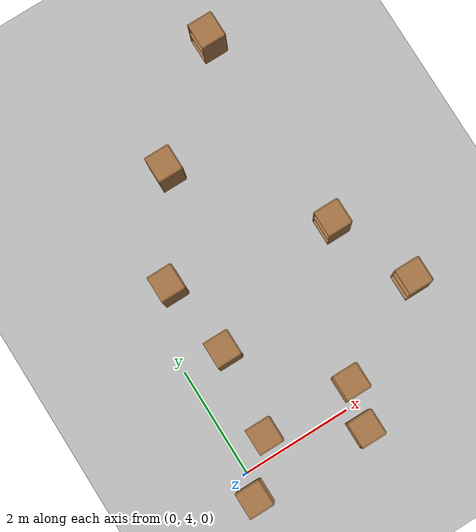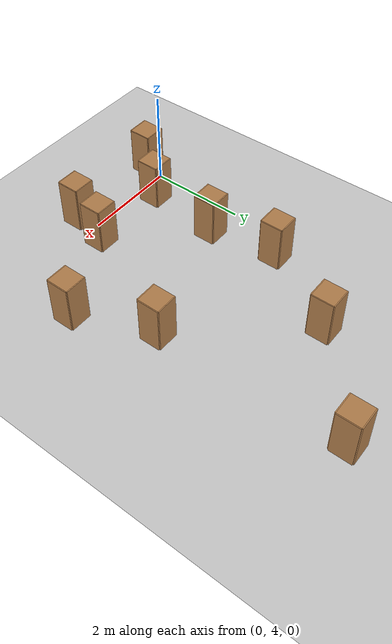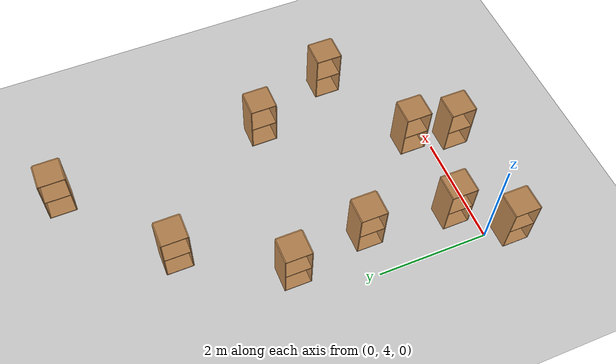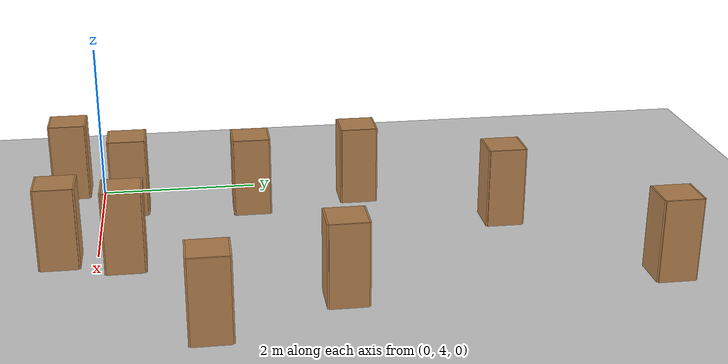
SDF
<sdf version="1.6">
 <world name="default">
  <model name="ground_plane">
   <static>1</static>
   <link name="link">
    <collision name="collision">
     <geometry><plane><normal>0 0 1</normal><size>100 100</size></plane></geometry>
     <surface><friction><ode><mu>100</mu><mu2>50</mu2></ode></friction></surface>
    </collision>
    <visual name="visual">
     <cast_shadows>0</cast_shadows>
     <geometry><plane><normal>0 0 1</normal><size>100 100</size></plane></geometry>
     <material>
      <script><uri>file://media/materials/scripts/gazebo.material</uri><name>Gazebo/Grey</name></script>
     </material>
    </visual>
   </link>
  </model>
  <model name="cabinet_0">
   <static>1</static>
   <link name="cabinet_bottom_plate">
    <inertial>
     <pose>0 0 -1 0 -0 0</pose>
     <inertia><ixx>2.05</ixx><ixy>0</ixy><ixz>0</ixz><iyy>2.05</iyy><iyz>0</iyz><izz>2.05</izz></inertia>
     <mass>25</mass>
    </inertial>
    <collision name="cabinet_bottom_plate_geom">
     <pose>0 0 0.01 0 -0 0</pose>
     <geometry><box><size>0.45 0.45 0.02</size></box></geometry>
    </collision>
    <visual name="cabinet_bottom_plate_geom_visual">
     <pose>0 0 0.01 0 -0 0</pose>
     <geometry><box><size>0.45 0.45 0.02</size></box></geometry>
     <material>
      <script><uri>file://media/materials/scripts/gazebo.material</uri><name>Gazebo/Wood</name></script>
     </material>
    </visual>
    <collision name="cabinet_bottom_plate_geom_cabinet_back_plate">
     <pose>0.235 0 0.51 0 -0 0</pose>
     <geometry><box><size>0.02 0.45 1.02</size></box></geometry>
    </collision>
    <visual name="cabinet_bottom_plate_geom_cabinet_back_plate_visual">
     <pose>0.235 0 0.51 0 -0 0</pose>
     <geometry><box><size>0.02 0.45 1.02</size></box></geometry>
     <material>
      <script><uri>file://media/materials/scripts/gazebo.material</uri><name>Gazebo/Wood</name></script>
     </material>
    </visual>
    <collision name="cabinet_bottom_plate_geom_cabinet_left_plate">
     <pose>0 0.235 0.51 0 -0 0</pose>
     <geometry><box><size>0.45 0.02 1.02</size></box></geometry>
    </collision>
    <visual name="cabinet_bottom_plate_geom_cabinet_left_plate_visual">
     <pose>0 0.235 0.51 0 -0 0</pose>
     <geometry><box><size>0.45 0.02 1.02</size></box></geometry>
     <material>
      <script><uri>file://media/materials/scripts/gazebo.material</uri><name>Gazebo/Wood</name></script>
     </material>
    </visual>
    <collision name="cabinet_bottom_plate_geom_cabinet_middle_plate">
     <pose>0 0 0.51 0 -0 0</pose>
     <geometry><box><size>0.45 0.45 0.02</size></box></geometry>
    </collision>
    <visual name="cabinet_bottom_plate_geom_cabinet_middle_plate_visual">
     <pose>0 0 0.51 0 -0 0</pose>
     <geometry><box><size>0.45 0.45 0.02</size></box></geometry>
     <material>
      <script><uri>file://media/materials/scripts/gazebo.material</uri><name>Gazebo/Wood</name></script>
     </material>
    </visual>
    <collision name="cabinet_bottom_plate_geom_cabinet_right_plate">
     <pose>0 -0.235 0.51 0 -0 0</pose>
     <geometry><box><size>0.45 0.02 1.02</size></box></geometry>
    </collision>
    <visual name="cabinet_bottom_plate_geom_cabinet_right_plate_visual">
     <pose>0 -0.235 0.51 0 -0 0</pose>
     <geometry><box><size>0.45 0.02 1.02</size></box></geometry>
     <material>
      <script><uri>file://media/materials/scripts/gazebo.material</uri><name>Gazebo/Wood</name></script>
     </material>
    </visual>
    <collision name="cabinet_bottom_plate_geom_cabinet_top_plate">
     <pose>0 0 1.01 0 -0 0</pose>
     <geometry><box><size>0.45 0.45 0.02</size></box></geometry>
    </collision>
    <visual name="cabinet_bottom_plate_geom_cabinet_top_plate_visual">
     <pose>0 0 1.01 0 -0 0</pose>
     <geometry><box><size>0.45 0.45 0.02</size></box></geometry>
     <material>
      <script><uri>file://media/materials/scripts/gazebo.material</uri><name>Gazebo/Wood</name></script>
     </material>
    </visual>
   </link>
   <pose>3.3673 10.6414 0 0 -0 0</pose>
  </model>
  <model name="cabinet_1">
   <static>1</static>
   <link name="cabinet_bottom_plate">
    <inertial>
     <pose>0 0 -1 0 -0 0</pose>
     <inertia><ixx>2.05</ixx><ixy>0</ixy><ixz>0</ixz><iyy>2.05</iyy><iyz>0</iyz><izz>2.05</izz></inertia>
     <mass>25</mass>
    </inertial>
    <collision name="cabinet_bottom_plate_geom">
     <pose>0 0 0.01 0 -0 0</pose>
     <geometry><box><size>0.45 0.45 0.02</size></box></geometry>
    </collision>
    <visual name="cabinet_bottom_plate_geom_visual">
     <pose>0 0 0.01 0 -0 0</pose>
     <geometry><box><size>0.45 0.45 0.02</size></box></geometry>
     <material>
      <script><uri>file://media/materials/scripts/gazebo.material</uri><name>Gazebo/Wood</name></script>
     </material>
    </visual>
    <collision name="cabinet_bottom_plate_geom_cabinet_back_plate">
     <pose>0.235 0 0.51 0 -0 0</pose>
     <geometry><box><size>0.02 0.45 1.02</size></box></geometry>
    </collision>
    <visual name="cabinet_bottom_plate_geom_cabinet_back_plate_visual">
     <pose>0.235 0 0.51 0 -0 0</pose>
     <geometry><box><size>0.02 0.45 1.02</size></box></geometry>
     <material>
      <script><uri>file://media/materials/scripts/gazebo.material</uri><name>Gazebo/Wood</name></script>
     </material>
    </visual>
    <collision name="cabinet_bottom_plate_geom_cabinet_left_plate">
     <pose>0 0.235 0.51 0 -0 0</pose>
     <geometry><box><size>0.45 0.02 1.02</size></box></geometry>
    </collision>
    <visual name="cabinet_bottom_plate_geom_cabinet_left_plate_visual">
     <pose>0 0.235 0.51 0 -0 0</pose>
     <geometry><box><size>0.45 0.02 1.02</size></box></geometry>
     <material>
      <script><uri>file://media/materials/scripts/gazebo.material</uri><name>Gazebo/Wood</name></script>
     </material>
    </visual>
    <collision name="cabinet_bottom_plate_geom_cabinet_middle_plate">
     <pose>0 0 0.51 0 -0 0</pose>
     <geometry><box><size>0.45 0.45 0.02</size></box></geometry>
    </collision>
    <visual name="cabinet_bottom_plate_geom_cabinet_middle_plate_visual">
     <pose>0 0 0.51 0 -0 0</pose>
     <geometry><box><size>0.45 0.45 0.02</size></box></geometry>
     <material>
      <script><uri>file://media/materials/scripts/gazebo.material</uri><name>Gazebo/Wood</name></script>
     </material>
    </visual>
    <collision name="cabinet_bottom_plate_geom_cabinet_right_plate">
     <pose>0 -0.235 0.51 0 -0 0</pose>
     <geometry><box><size>0.45 0.02 1.02</size></box></geometry>
    </collision>
    <visual name="cabinet_bottom_plate_geom_cabinet_right_plate_visual">
     <pose>0 -0.235 0.51 0 -0 0</pose>
     <geometry><box><size>0.45 0.02 1.02</size></box></geometry>
     <material>
      <script><uri>file://media/materials/scripts/gazebo.material</uri><name>Gazebo/Wood</name></script>
     </material>
    </visual>
    <collision name="cabinet_bottom_plate_geom_cabinet_top_plate">
     <pose>0 0 1.01 0 -0 0</pose>
     <geometry><box><size>0.45 0.45 0.02</size></box></geometry>
    </collision>
    <visual name="cabinet_bottom_plate_geom_cabinet_top_plate_visual">
     <pose>0 0 1.01 0 -0 0</pose>
     <geometry><box><size>0.45 0.45 0.02</size></box></geometry>
     <material>
      <script><uri>file://media/materials/scripts/gazebo.material</uri><name>Gazebo/Wood</name></script>
     </material>
    </visual>
   </link>
   <pose>1.55819 9.08131 0 0 -0 0</pose>
  </model>
  <model name="cabinet_10">
   <static>1</static>
   <link name="cabinet_bottom_plate">
    <inertial>
     <pose>0 0 -1 0 -0 0</pose>
     <inertia><ixx>2.05</ixx><ixy>0</ixy><ixz>0</ixz><iyy>2.05</iyy><iyz>0</iyz><izz>2.05</izz></inertia>
     <mass>25</mass>
    </inertial>
    <collision name="cabinet_bottom_plate_geom">
     <pose>0 0 0.01 0 -0 0</pose>
     <geometry><box><size>0.45 0.45 0.02</size></box></geometry>
    </collision>
    <visual name="cabinet_bottom_plate_geom_visual">
     <pose>0 0 0.01 0 -0 0</pose>
     <geometry><box><size>0.45 0.45 0.02</size></box></geometry>
     <material>
      <script><uri>file://media/materials/scripts/gazebo.material</uri><name>Gazebo/Wood</name></script>
     </material>
    </visual>
    <collision name="cabinet_bottom_plate_geom_cabinet_back_plate">
     <pose>0.235 0 0.51 0 -0 0</pose>
     <geometry><box><size>0.02 0.45 1.02</size></box></geometry>
    </collision>
    <visual name="cabinet_bottom_plate_geom_cabinet_back_plate_visual">
     <pose>0.235 0 0.51 0 -0 0</pose>
     <geometry><box><size>0.02 0.45 1.02</size></box></geometry>
     <material>
      <script><uri>file://media/materials/scripts/gazebo.material</uri><name>Gazebo/Wood</name></script>
     </material>
    </visual>
    <collision name="cabinet_bottom_plate_geom_cabinet_left_plate">
     <pose>0 0.235 0.51 0 -0 0</pose>
     <geometry><box><size>0.45 0.02 1.02</size></box></geometry>
    </collision>
    <visual name="cabinet_bottom_plate_geom_cabinet_left_plate_visual">
     <pose>0 0.235 0.51 0 -0 0</pose>
     <geometry><box><size>0.45 0.02 1.02</size></box></geometry>
     <material>
      <script><uri>file://media/materials/scripts/gazebo.material</uri><name>Gazebo/Wood</name></script>
     </material>
    </visual>
    <collision name="cabinet_bottom_plate_geom_cabinet_middle_plate">
     <pose>0 0 0.51 0 -0 0</pose>
     <geometry><box><size>0.45 0.45 0.02</size></box></geometry>
    </collision>
    <visual name="cabinet_bottom_plate_geom_cabinet_middle_plate_visual">
     <pose>0 0 0.51 0 -0 0</pose>
     <geometry><box><size>0.45 0.45 0.02</size></box></geometry>
     <material>
      <script><uri>file://media/materials/scripts/gazebo.material</uri><name>Gazebo/Wood</name></script>
     </material>
    </visual>
    <collision name="cabinet_bottom_plate_geom_cabinet_right_plate">
     <pose>0 -0.235 0.51 0 -0 0</pose>
     <geometry><box><size>0.45 0.02 1.02</size></box></geometry>
    </collision>
    <visual name="cabinet_bottom_plate_geom_cabinet_right_plate_visual">
     <pose>0 -0.235 0.51 0 -0 0</pose>
     <geometry><box><size>0.45 0.02 1.02</size></box></geometry>
     <material>
      <script><uri>file://media/materials/scripts/gazebo.material</uri><name>Gazebo/Wood</name></script>
     </material>
    </visual>
    <collision name="cabinet_bottom_plate_geom_cabinet_top_plate">
     <pose>0 0 1.01 0 -0 0</pose>
     <geometry><box><size>0.45 0.45 0.02</size></box></geometry>
    </collision>
    <visual name="cabinet_bottom_plate_geom_cabinet_top_plate_visual">
     <pose>0 0 1.01 0 -0 0</pose>
     <geometry><box><size>0.45 0.45 0.02</size></box></geometry>
     <material>
      <script><uri>file://media/materials/scripts/gazebo.material</uri><name>Gazebo/Wood</name></script>
     </material>
    </visual>
   </link>
   <pose>0.54763 7.35241 0 0 -0 0</pose>
  </model>
  <model name="cabinet_17">
   <static>1</static>
   <link name="cabinet_bottom_plate">
    <inertial>
     <pose>0 0 -1 0 -0 0</pose>
     <inertia><ixx>2.05</ixx><ixy>0</ixy><ixz>0</ixz><iyy>2.05</iyy><iyz>0</iyz><izz>2.05</izz></inertia>
     <mass>25</mass>
    </inertial>
    <collision name="cabinet_bottom_plate_geom">
     <pose>0 0 0.01 0 -0 0</pose>
     <geometry><box><size>0.45 0.45 0.02</size></box></geometry>
    </collision>
    <visual name="cabinet_bottom_plate_geom_visual">
     <pose>0 0 0.01 0 -0 0</pose>
     <geometry><box><size>0.45 0.45 0.02</size></box></geometry>
     <material>
      <script><uri>file://media/materials/scripts/gazebo.material</uri><name>Gazebo/Wood</name></script>
     </material>
    </visual>
    <collision name="cabinet_bottom_plate_geom_cabinet_back_plate">
     <pose>0.235 0 0.51 0 -0 0</pose>
     <geometry><box><size>0.02 0.45 1.02</size></box></geometry>
    </collision>
    <visual name="cabinet_bottom_plate_geom_cabinet_back_plate_visual">
     <pose>0.235 0 0.51 0 -0 0</pose>
     <geometry><box><size>0.02 0.45 1.02</size></box></geometry>
     <material>
      <script><uri>file://media/materials/scripts/gazebo.material</uri><name>Gazebo/Wood</name></script>
     </material>
    </visual>
    <collision name="cabinet_bottom_plate_geom_cabinet_left_plate">
     <pose>0 0.235 0.51 0 -0 0</pose>
     <geometry><box><size>0.45 0.02 1.02</size></box></geometry>
    </collision>
    <visual name="cabinet_bottom_plate_geom_cabinet_left_plate_visual">
     <pose>0 0.235 0.51 0 -0 0</pose>
     <geometry><box><size>0.45 0.02 1.02</size></box></geometry>
     <material>
      <script><uri>file://media/materials/scripts/gazebo.material</uri><name>Gazebo/Wood</name></script>
     </material>
    </visual>
    <collision name="cabinet_bottom_plate_geom_cabinet_middle_plate">
     <pose>0 0 0.51 0 -0 0</pose>
     <geometry><box><size>0.45 0.45 0.02</size></box></geometry>
    </collision>
    <visual name="cabinet_bottom_plate_geom_cabinet_middle_plate_visual">
     <pose>0 0 0.51 0 -0 0</pose>
     <geometry><box><size>0.45 0.45 0.02</size></box></geometry>
     <material>
      <script><uri>file://media/materials/scripts/gazebo.material</uri><name>Gazebo/Wood</name></script>
     </material>
    </visual>
    <collision name="cabinet_bottom_plate_geom_cabinet_right_plate">
     <pose>0 -0.235 0.51 0 -0 0</pose>
     <geometry><box><size>0.45 0.02 1.02</size></box></geometry>
    </collision>
    <visual name="cabinet_bottom_plate_geom_cabinet_right_plate_visual">
     <pose>0 -0.235 0.51 0 -0 0</pose>
     <geometry><box><size>0.45 0.02 1.02</size></box></geometry>
     <material>
      <script><uri>file://media/materials/scripts/gazebo.material</uri><name>Gazebo/Wood</name></script>
     </material>
    </visual>
    <collision name="cabinet_bottom_plate_geom_cabinet_top_plate">
     <pose>0 0 1.01 0 -0 0</pose>
     <geometry><box><size>0.45 0.45 0.02</size></box></geometry>
    </collision>
    <visual name="cabinet_bottom_plate_geom_cabinet_top_plate_visual">
     <pose>0 0 1.01 0 -0 0</pose>
     <geometry><box><size>0.45 0.45 0.02</size></box></geometry>
     <material>
      <script><uri>file://media/materials/scripts/gazebo.material</uri><name>Gazebo/Wood</name></script>
     </material>
    </visual>
   </link>
   <pose>3.4695 6.80948 0 0 -0 0</pose>
  </model>
  <model name="cabinet_18">
   <static>1</static>
   <link name="cabinet_bottom_plate">
    <inertial>
     <pose>0 0 -1 0 -0 0</pose>
     <inertia><ixx>2.05</ixx><ixy>0</ixy><ixz>0</ixz><iyy>2.05</iyy><iyz>0</iyz><izz>2.05</izz></inertia>
     <mass>25</mass>
    </inertial>
    <collision name="cabinet_bottom_plate_geom">
     <pose>0 0 0.01 0 -0 0</pose>
     <geometry><box><size>0.45 0.45 0.02</size></box></geometry>
    </collision>
    <visual name="cabinet_bottom_plate_geom_visual">
     <pose>0 0 0.01 0 -0 0</pose>
     <geometry><box><size>0.45 0.45 0.02</size></box></geometry>
     <material>
      <script><uri>file://media/materials/scripts/gazebo.material</uri><name>Gazebo/Wood</name></script>
     </material>
    </visual>
    <collision name="cabinet_bottom_plate_geom_cabinet_back_plate">
     <pose>0.235 0 0.51 0 -0 0</pose>
     <geometry><box><size>0.02 0.45 1.02</size></box></geometry>
    </collision>
    <visual name="cabinet_bottom_plate_geom_cabinet_back_plate_visual">
     <pose>0.235 0 0.51 0 -0 0</pose>
     <geometry><box><size>0.02 0.45 1.02</size></box></geometry>
     <material>
      <script><uri>file://media/materials/scripts/gazebo.material</uri><name>Gazebo/Wood</name></script>
     </material>
    </visual>
    <collision name="cabinet_bottom_plate_geom_cabinet_left_plate">
     <pose>0 0.235 0.51 0 -0 0</pose>
     <geometry><box><size>0.45 0.02 1.02</size></box></geometry>
    </collision>
    <visual name="cabinet_bottom_plate_geom_cabinet_left_plate_visual">
     <pose>0 0.235 0.51 0 -0 0</pose>
     <geometry><box><size>0.45 0.02 1.02</size></box></geometry>
     <material>
      <script><uri>file://media/materials/scripts/gazebo.material</uri><name>Gazebo/Wood</name></script>
     </material>
    </visual>
    <collision name="cabinet_bottom_plate_geom_cabinet_middle_plate">
     <pose>0 0 0.51 0 -0 0</pose>
     <geometry><box><size>0.45 0.45 0.02</size></box></geometry>
    </collision>
    <visual name="cabinet_bottom_plate_geom_cabinet_middle_plate_visual">
     <pose>0 0 0.51 0 -0 0</pose>
     <geometry><box><size>0.45 0.45 0.02</size></box></geometry>
     <material>
      <script><uri>file://media/materials/scripts/gazebo.material</uri><name>Gazebo/Wood</name></script>
     </material>
    </visual>
    <collision name="cabinet_bottom_plate_geom_cabinet_right_plate">
     <pose>0 -0.235 0.51 0 -0 0</pose>
     <geometry><box><size>0.45 0.02 1.02</size></box></geometry>
    </collision>
    <visual name="cabinet_bottom_plate_geom_cabinet_right_plate_visual">
     <pose>0 -0.235 0.51 0 -0 0</pose>
     <geometry><box><size>0.45 0.02 1.02</size></box></geometry>
     <material>
      <script><uri>file://media/materials/scripts/gazebo.material</uri><name>Gazebo/Wood</name></script>
     </material>
    </visual>
    <collision name="cabinet_bottom_plate_geom_cabinet_top_plate">
     <pose>0 0 1.01 0 -0 0</pose>
     <geometry><box><size>0.45 0.45 0.02</size></box></geometry>
    </collision>
    <visual name="cabinet_bottom_plate_geom_cabinet_top_plate_visual">
     <pose>0 0 1.01 0 -0 0</pose>
     <geometry><box><size>0.45 0.45 0.02</size></box></geometry>
     <material>
      <script><uri>file://media/materials/scripts/gazebo.material</uri><name>Gazebo/Wood</name></script>
     </material>
    </visual>
   </link>
   <pose>0.761251 5.93431 0 0 -0 0</pose>
  </model>
  <model name="cabinet_25">
   <static>1</static>
   <link name="cabinet_bottom_plate">
    <inertial>
     <pose>0 0 -1 0 -0 0</pose>
     <inertia><ixx>2.05</ixx><ixy>0</ixy><ixz>0</ixz><iyy>2.05</iyy><iyz>0</iyz><izz>2.05</izz></inertia>
     <mass>25</mass>
    </inertial>
    <collision name="cabinet_bottom_plate_geom">
     <pose>0 0 0.01 0 -0 0</pose>
     <geometry><box><size>0.45 0.45 0.02</size></box></geometry>
    </collision>
    <visual name="cabinet_bottom_plate_geom_visual">
     <pose>0 0 0.01 0 -0 0</pose>
     <geometry><box><size>0.45 0.45 0.02</size></box></geometry>
     <material>
      <script><uri>file://media/materials/scripts/gazebo.material</uri><name>Gazebo/Wood</name></script>
     </material>
    </visual>
    <collision name="cabinet_bottom_plate_geom_cabinet_back_plate">
     <pose>0.235 0 0.51 0 -0 0</pose>
     <geometry><box><size>0.02 0.45 1.02</size></box></geometry>
    </collision>
    <visual name="cabinet_bottom_plate_geom_cabinet_back_plate_visual">
     <pose>0.235 0 0.51 0 -0 0</pose>
     <geometry><box><size>0.02 0.45 1.02</size></box></geometry>
     <material>
      <script><uri>file://media/materials/scripts/gazebo.material</uri><name>Gazebo/Wood</name></script>
     </material>
    </visual>
    <collision name="cabinet_bottom_plate_geom_cabinet_left_plate">
     <pose>0 0.235 0.51 0 -0 0</pose>
     <geometry><box><size>0.45 0.02 1.02</size></box></geometry>
    </collision>
    <visual name="cabinet_bottom_plate_geom_cabinet_left_plate_visual">
     <pose>0 0.235 0.51 0 -0 0</pose>
     <geometry><box><size>0.45 0.02 1.02</size></box></geometry>
     <material>
      <script><uri>file://media/materials/scripts/gazebo.material</uri><name>Gazebo/Wood</name></script>
     </material>
    </visual>
    <collision name="cabinet_bottom_plate_geom_cabinet_middle_plate">
     <pose>0 0 0.51 0 -0 0</pose>
     <geometry><box><size>0.45 0.45 0.02</size></box></geometry>
    </collision>
    <visual name="cabinet_bottom_plate_geom_cabinet_middle_plate_visual">
     <pose>0 0 0.51 0 -0 0</pose>
     <geometry><box><size>0.45 0.45 0.02</size></box></geometry>
     <material>
      <script><uri>file://media/materials/scripts/gazebo.material</uri><name>Gazebo/Wood</name></script>
     </material>
    </visual>
    <collision name="cabinet_bottom_plate_geom_cabinet_right_plate">
     <pose>0 -0.235 0.51 0 -0 0</pose>
     <geometry><box><size>0.45 0.02 1.02</size></box></geometry>
    </collision>
    <visual name="cabinet_bottom_plate_geom_cabinet_right_plate_visual">
     <pose>0 -0.235 0.51 0 -0 0</pose>
     <geometry><box><size>0.45 0.02 1.02</size></box></geometry>
     <material>
      <script><uri>file://media/materials/scripts/gazebo.material</uri><name>Gazebo/Wood</name></script>
     </material>
    </visual>
    <collision name="cabinet_bottom_plate_geom_cabinet_top_plate">
     <pose>0 0 1.01 0 -0 0</pose>
     <geometry><box><size>0.45 0.45 0.02</size></box></geometry>
    </collision>
    <visual name="cabinet_bottom_plate_geom_cabinet_top_plate_visual">
     <pose>0 0 1.01 0 -0 0</pose>
     <geometry><box><size>0.45 0.45 0.02</size></box></geometry>
     <material>
      <script><uri>file://media/materials/scripts/gazebo.material</uri><name>Gazebo/Wood</name></script>
     </material>
    </visual>
   </link>
   <pose>4.08516 5.27802 0 0 -0 0</pose>
  </model>
  <model name="cabinet_26">
   <static>1</static>
   <link name="cabinet_bottom_plate">
    <inertial>
     <pose>0 0 -1 0 -0 0</pose>
     <inertia><ixx>2.05</ixx><ixy>0</ixy><ixz>0</ixz><iyy>2.05</iyy><iyz>0</iyz><izz>2.05</izz></inertia>
     <mass>25</mass>
    </inertial>
    <collision name="cabinet_bottom_plate_geom">
     <pose>0 0 0.01 0 -0 0</pose>
     <geometry><box><size>0.45 0.45 0.02</size></box></geometry>
    </collision>
    <visual name="cabinet_bottom_plate_geom_visual">
     <pose>0 0 0.01 0 -0 0</pose>
     <geometry><box><size>0.45 0.45 0.02</size></box></geometry>
     <material>
      <script><uri>file://media/materials/scripts/gazebo.material</uri><name>Gazebo/Wood</name></script>
     </material>
    </visual>
    <collision name="cabinet_bottom_plate_geom_cabinet_back_plate">
     <pose>0.235 0 0.51 0 -0 0</pose>
     <geometry><box><size>0.02 0.45 1.02</size></box></geometry>
    </collision>
    <visual name="cabinet_bottom_plate_geom_cabinet_back_plate_visual">
     <pose>0.235 0 0.51 0 -0 0</pose>
     <geometry><box><size>0.02 0.45 1.02</size></box></geometry>
     <material>
      <script><uri>file://media/materials/scripts/gazebo.material</uri><name>Gazebo/Wood</name></script>
     </material>
    </visual>
    <collision name="cabinet_bottom_plate_geom_cabinet_left_plate">
     <pose>0 0.235 0.51 0 -0 0</pose>
     <geometry><box><size>0.45 0.02 1.02</size></box></geometry>
    </collision>
    <visual name="cabinet_bottom_plate_geom_cabinet_left_plate_visual">
     <pose>0 0.235 0.51 0 -0 0</pose>
     <geometry><box><size>0.45 0.02 1.02</size></box></geometry>
     <material>
      <script><uri>file://media/materials/scripts/gazebo.material</uri><name>Gazebo/Wood</name></script>
     </material>
    </visual>
    <collision name="cabinet_bottom_plate_geom_cabinet_middle_plate">
     <pose>0 0 0.51 0 -0 0</pose>
     <geometry><box><size>0.45 0.45 0.02</size></box></geometry>
    </collision>
    <visual name="cabinet_bottom_plate_geom_cabinet_middle_plate_visual">
     <pose>0 0 0.51 0 -0 0</pose>
     <geometry><box><size>0.45 0.45 0.02</size></box></geometry>
     <material>
      <script><uri>file://media/materials/scripts/gazebo.material</uri><name>Gazebo/Wood</name></script>
     </material>
    </visual>
    <collision name="cabinet_bottom_plate_geom_cabinet_right_plate">
     <pose>0 -0.235 0.51 0 -0 0</pose>
     <geometry><box><size>0.45 0.02 1.02</size></box></geometry>
    </collision>
    <visual name="cabinet_bottom_plate_geom_cabinet_right_plate_visual">
     <pose>0 -0.235 0.51 0 -0 0</pose>
     <geometry><box><size>0.45 0.02 1.02</size></box></geometry>
     <material>
      <script><uri>file://media/materials/scripts/gazebo.material</uri><name>Gazebo/Wood</name></script>
     </material>
    </visual>
    <collision name="cabinet_bottom_plate_geom_cabinet_top_plate">
     <pose>0 0 1.01 0 -0 0</pose>
     <geometry><box><size>0.45 0.45 0.02</size></box></geometry>
    </collision>
    <visual name="cabinet_bottom_plate_geom_cabinet_top_plate_visual">
     <pose>0 0 1.01 0 -0 0</pose>
     <geometry><box><size>0.45 0.45 0.02</size></box></geometry>
     <material>
      <script><uri>file://media/materials/scripts/gazebo.material</uri><name>Gazebo/Wood</name></script>
     </material>
    </visual>
   </link>
   <pose>2.27709 4.34534 0 0 -0 0</pose>
  </model>
  <model name="cabinet_27">
   <static>1</static>
   <link name="cabinet_bottom_plate">
    <inertial>
     <pose>0 0 -1 0 -0 0</pose>
     <inertia><ixx>2.05</ixx><ixy>0</ixy><ixz>0</ixz><iyy>2.05</iyy><iyz>0</iyz><izz>2.05</izz></inertia>
     <mass>25</mass>
    </inertial>
    <collision name="cabinet_bottom_plate_geom">
     <pose>0 0 0.01 0 -0 0</pose>
     <geometry><box><size>0.45 0.45 0.02</size></box></geometry>
    </collision>
    <visual name="cabinet_bottom_plate_geom_visual">
     <pose>0 0 0.01 0 -0 0</pose>
     <geometry><box><size>0.45 0.45 0.02</size></box></geometry>
     <material>
      <script><uri>file://media/materials/scripts/gazebo.material</uri><name>Gazebo/Wood</name></script>
     </material>
    </visual>
    <collision name="cabinet_bottom_plate_geom_cabinet_back_plate">
     <pose>0.235 0 0.51 0 -0 0</pose>
     <geometry><box><size>0.02 0.45 1.02</size></box></geometry>
    </collision>
    <visual name="cabinet_bottom_plate_geom_cabinet_back_plate_visual">
     <pose>0.235 0 0.51 0 -0 0</pose>
     <geometry><box><size>0.02 0.45 1.02</size></box></geometry>
     <material>
      <script><uri>file://media/materials/scripts/gazebo.material</uri><name>Gazebo/Wood</name></script>
     </material>
    </visual>
    <collision name="cabinet_bottom_plate_geom_cabinet_left_plate">
     <pose>0 0.235 0.51 0 -0 0</pose>
     <geometry><box><size>0.45 0.02 1.02</size></box></geometry>
    </collision>
    <visual name="cabinet_bottom_plate_geom_cabinet_left_plate_visual">
     <pose>0 0.235 0.51 0 -0 0</pose>
     <geometry><box><size>0.45 0.02 1.02</size></box></geometry>
     <material>
      <script><uri>file://media/materials/scripts/gazebo.material</uri><name>Gazebo/Wood</name></script>
     </material>
    </visual>
    <collision name="cabinet_bottom_plate_geom_cabinet_middle_plate">
     <pose>0 0 0.51 0 -0 0</pose>
     <geometry><box><size>0.45 0.45 0.02</size></box></geometry>
    </collision>
    <visual name="cabinet_bottom_plate_geom_cabinet_middle_plate_visual">
     <pose>0 0 0.51 0 -0 0</pose>
     <geometry><box><size>0.45 0.45 0.02</size></box></geometry>
     <material>
      <script><uri>file://media/materials/scripts/gazebo.material</uri><name>Gazebo/Wood</name></script>
     </material>
    </visual>
    <collision name="cabinet_bottom_plate_geom_cabinet_right_plate">
     <pose>0 -0.235 0.51 0 -0 0</pose>
     <geometry><box><size>0.45 0.02 1.02</size></box></geometry>
    </collision>
    <visual name="cabinet_bottom_plate_geom_cabinet_right_plate_visual">
     <pose>0 -0.235 0.51 0 -0 0</pose>
     <geometry><box><size>0.45 0.02 1.02</size></box></geometry>
     <material>
      <script><uri>file://media/materials/scripts/gazebo.material</uri><name>Gazebo/Wood</name></script>
     </material>
    </visual>
    <collision name="cabinet_bottom_plate_geom_cabinet_top_plate">
     <pose>0 0 1.01 0 -0 0</pose>
     <geometry><box><size>0.45 0.45 0.02</size></box></geometry>
    </collision>
    <visual name="cabinet_bottom_plate_geom_cabinet_top_plate_visual">
     <pose>0 0 1.01 0 -0 0</pose>
     <geometry><box><size>0.45 0.45 0.02</size></box></geometry>
     <material>
      <script><uri>file://media/materials/scripts/gazebo.material</uri><name>Gazebo/Wood</name></script>
     </material>
    </visual>
   </link>
   <pose>0.595585 4.36219 0 0 -0 0</pose>
  </model>
  <model name="cabinet_35">
   <static>1</static>
   <link name="cabinet_bottom_plate">
    <inertial>
     <pose>0 0 -1 0 -0 0</pose>
     <inertia><ixx>2.05</ixx><ixy>0</ixy><ixz>0</ixz><iyy>2.05</iyy><iyz>0</iyz><izz>2.05</izz></inertia>
     <mass>25</mass>
    </inertial>
    <collision name="cabinet_bottom_plate_geom">
     <pose>0 0 0.01 0 -0 0</pose>
     <geometry><box><size>0.45 0.45 0.02</size></box></geometry>
    </collision>
    <visual name="cabinet_bottom_plate_geom_visual">
     <pose>0 0 0.01 0 -0 0</pose>
     <geometry><box><size>0.45 0.45 0.02</size></box></geometry>
     <material>
      <script><uri>file://media/materials/scripts/gazebo.material</uri><name>Gazebo/Wood</name></script>
     </material>
    </visual>
    <collision name="cabinet_bottom_plate_geom_cabinet_back_plate">
     <pose>0.235 0 0.51 0 -0 0</pose>
     <geometry><box><size>0.02 0.45 1.02</size></box></geometry>
    </collision>
    <visual name="cabinet_bottom_plate_geom_cabinet_back_plate_visual">
     <pose>0.235 0 0.51 0 -0 0</pose>
     <geometry><box><size>0.02 0.45 1.02</size></box></geometry>
     <material>
      <script><uri>file://media/materials/scripts/gazebo.material</uri><name>Gazebo/Wood</name></script>
     </material>
    </visual>
    <collision name="cabinet_bottom_plate_geom_cabinet_left_plate">
     <pose>0 0.235 0.51 0 -0 0</pose>
     <geometry><box><size>0.45 0.02 1.02</size></box></geometry>
    </collision>
    <visual name="cabinet_bottom_plate_geom_cabinet_left_plate_visual">
     <pose>0 0.235 0.51 0 -0 0</pose>
     <geometry><box><size>0.45 0.02 1.02</size></box></geometry>
     <material>
      <script><uri>file://media/materials/scripts/gazebo.material</uri><name>Gazebo/Wood</name></script>
     </material>
    </visual>
    <collision name="cabinet_bottom_plate_geom_cabinet_middle_plate">
     <pose>0 0 0.51 0 -0 0</pose>
     <geometry><box><size>0.45 0.45 0.02</size></box></geometry>
    </collision>
    <visual name="cabinet_bottom_plate_geom_cabinet_middle_plate_visual">
     <pose>0 0 0.51 0 -0 0</pose>
     <geometry><box><size>0.45 0.45 0.02</size></box></geometry>
     <material>
      <script><uri>file://media/materials/scripts/gazebo.material</uri><name>Gazebo/Wood</name></script>
     </material>
    </visual>
    <collision name="cabinet_bottom_plate_geom_cabinet_right_plate">
     <pose>0 -0.235 0.51 0 -0 0</pose>
     <geometry><box><size>0.45 0.02 1.02</size></box></geometry>
    </collision>
    <visual name="cabinet_bottom_plate_geom_cabinet_right_plate_visual">
     <pose>0 -0.235 0.51 0 -0 0</pose>
     <geometry><box><size>0.45 0.02 1.02</size></box></geometry>
     <material>
      <script><uri>file://media/materials/scripts/gazebo.material</uri><name>Gazebo/Wood</name></script>
     </material>
    </visual>
    <collision name="cabinet_bottom_plate_geom_cabinet_top_plate">
     <pose>0 0 1.01 0 -0 0</pose>
     <geometry><box><size>0.45 0.45 0.02</size></box></geometry>
    </collision>
    <visual name="cabinet_bottom_plate_geom_cabinet_top_plate_visual">
     <pose>0 0 1.01 0 -0 0</pose>
     <geometry><box><size>0.45 0.45 0.02</size></box></geometry>
     <material>
      <script><uri>file://media/materials/scripts/gazebo.material</uri><name>Gazebo/Wood</name></script>
     </material>
    </visual>
   </link>
   <pose>2.07497 3.56988 0 0 -0 0</pose>
  </model>
  <model name="cabinet_36">
   <static>1</static>
   <link name="cabinet_bottom_plate">
    <inertial>
     <pose>0 0 -1 0 -0 0</pose>
     <inertia><ixx>2.05</ixx><ixy>0</ixy><ixz>0</ixz><iyy>2.05</iyy><iyz>0</iyz><izz>2.05</izz></inertia>
     <mass>25</mass>
    </inertial>
    <collision name="cabinet_bottom_plate_geom">
     <pose>0 0 0.01 0 -0 0</pose>
     <geometry><box><size>0.45 0.45 0.02</size></box></geometry>
    </collision>
    <visual name="cabinet_bottom_plate_geom_visual">
     <pose>0 0 0.01 0 -0 0</pose>
     <geometry><box><size>0.45 0.45 0.02</size></box></geometry>
     <material>
      <script><uri>file://media/materials/scripts/gazebo.material</uri><name>Gazebo/Wood</name></script>
     </material>
    </visual>
    <collision name="cabinet_bottom_plate_geom_cabinet_back_plate">
     <pose>0.235 0 0.51 0 -0 0</pose>
     <geometry><box><size>0.02 0.45 1.02</size></box></geometry>
    </collision>
    <visual name="cabinet_bottom_plate_geom_cabinet_back_plate_visual">
     <pose>0.235 0 0.51 0 -0 0</pose>
     <geometry><box><size>0.02 0.45 1.02</size></box></geometry>
     <material>
      <script><uri>file://media/materials/scripts/gazebo.material</uri><name>Gazebo/Wood</name></script>
     </material>
    </visual>
    <collision name="cabinet_bottom_plate_geom_cabinet_left_plate">
     <pose>0 0.235 0.51 0 -0 0</pose>
     <geometry><box><size>0.45 0.02 1.02</size></box></geometry>
    </collision>
    <visual name="cabinet_bottom_plate_geom_cabinet_left_plate_visual">
     <pose>0 0.235 0.51 0 -0 0</pose>
     <geometry><box><size>0.45 0.02 1.02</size></box></geometry>
     <material>
      <script><uri>file://media/materials/scripts/gazebo.material</uri><name>Gazebo/Wood</name></script>
     </material>
    </visual>
    <collision name="cabinet_bottom_plate_geom_cabinet_middle_plate">
     <pose>0 0 0.51 0 -0 0</pose>
     <geometry><box><size>0.45 0.45 0.02</size></box></geometry>
    </collision>
    <visual name="cabinet_bottom_plate_geom_cabinet_middle_plate_visual">
     <pose>0 0 0.51 0 -0 0</pose>
     <geometry><box><size>0.45 0.45 0.02</size></box></geometry>
     <material>
      <script><uri>file://media/materials/scripts/gazebo.material</uri><name>Gazebo/Wood</name></script>
     </material>
    </visual>
    <collision name="cabinet_bottom_plate_geom_cabinet_right_plate">
     <pose>0 -0.235 0.51 0 -0 0</pose>
     <geometry><box><size>0.45 0.02 1.02</size></box></geometry>
    </collision>
    <visual name="cabinet_bottom_plate_geom_cabinet_right_plate_visual">
     <pose>0 -0.235 0.51 0 -0 0</pose>
     <geometry><box><size>0.45 0.02 1.02</size></box></geometry>
     <material>
      <script><uri>file://media/materials/scripts/gazebo.material</uri><name>Gazebo/Wood</name></script>
     </material>
    </visual>
    <collision name="cabinet_bottom_plate_geom_cabinet_top_plate">
     <pose>0 0 1.01 0 -0 0</pose>
     <geometry><box><size>0.45 0.45 0.02</size></box></geometry>
    </collision>
    <visual name="cabinet_bottom_plate_geom_cabinet_top_plate_visual">
     <pose>0 0 1.01 0 -0 0</pose>
     <geometry><box><size>0.45 0.45 0.02</size></box></geometry>
     <material>
      <script><uri>file://media/materials/scripts/gazebo.material</uri><name>Gazebo/Wood</name></script>
     </material>
    </visual>
   </link>
   <pose>-0.086672 3.57312 0 0 -0 0</pose>
  </model>
 </world>
</sdf>
